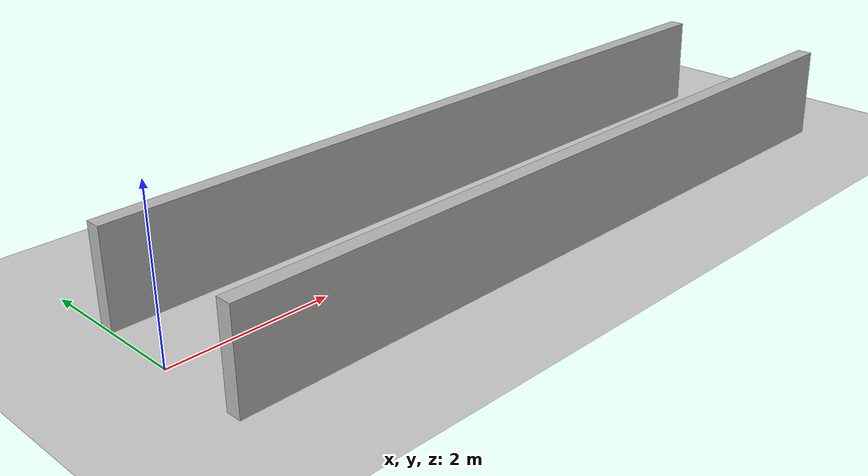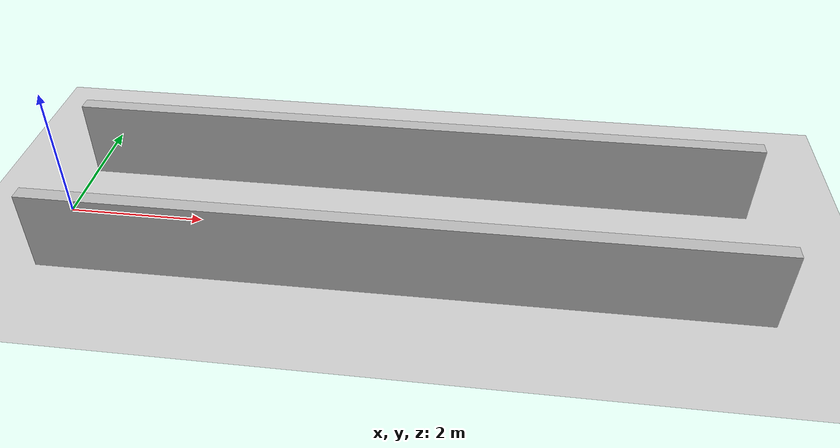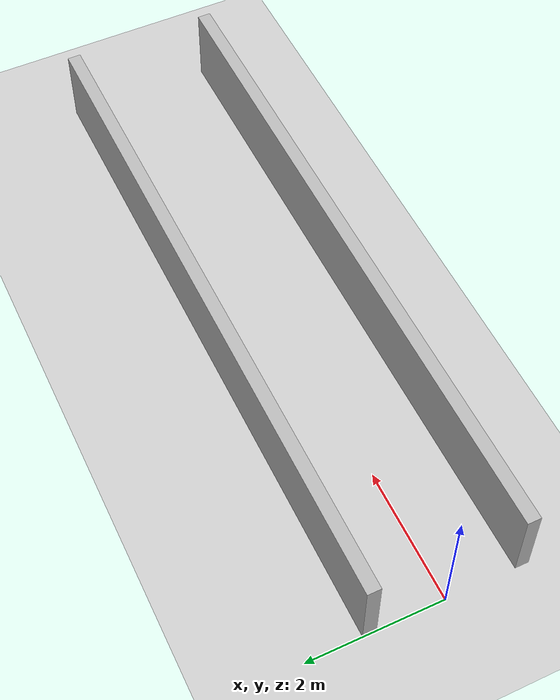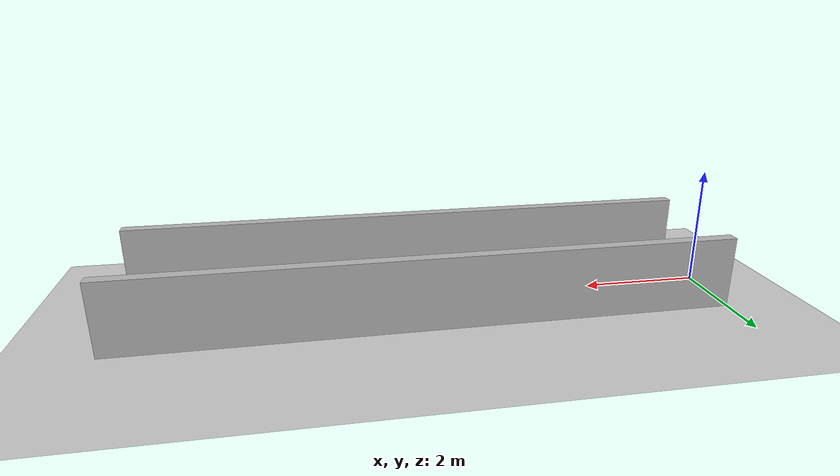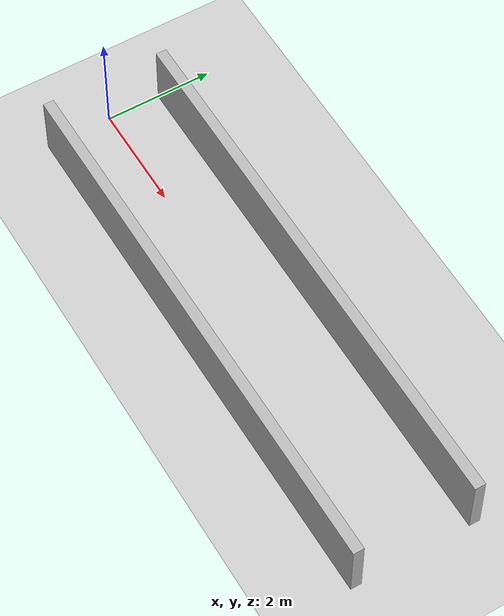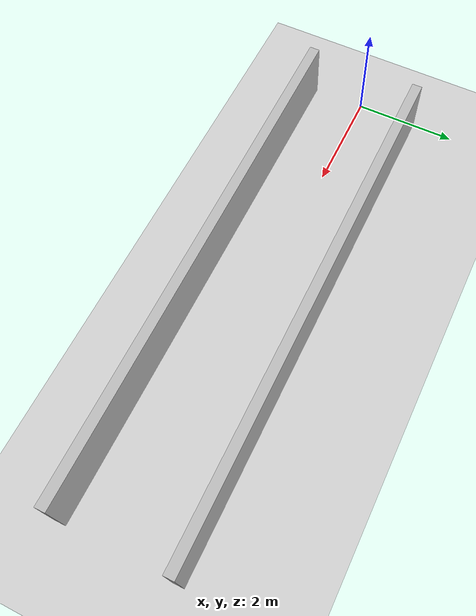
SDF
<?xml version="1.0"?>
<sdf version="1.6">
  <world name="v2-04g-r1-corridor-s4931">
    <gravity>0 0 -9.81</gravity>
    <physics name="v2_deterministic" type="ode">
      <max_step_size>0.002</max_step_size>
      <real_time_update_rate>500</real_time_update_rate>
    </physics>
    <include>
      <uri>model://sun</uri>
    </include>
    <include>
      <uri>model://ground_plane</uri>
    </include>
    <model name="corridor-left">
      <static>true</static>
      <pose>5.005324636 1.098894194 0.600000000 0 0 0.002737395</pose>
      <link name="link">
        <collision name="collision">
          <geometry>
            <box>
              <size>10.000000 0.200000 1.200000</size>
            </box>
          </geometry>
        </collision>
        <visual name="visual">
          <geometry>
            <box>
              <size>10.000000 0.200000 1.200000</size>
            </box>
          </geometry>
        </visual>
      </link>
    </model>
    <model name="corridor-right">
      <static>true</static>
      <pose>4.995414291 -1.107505468 0.600000000 0 0 0.003519884</pose>
      <link name="link">
        <collision name="collision">
          <geometry>
            <box>
              <size>10.000000 0.200000 1.200000</size>
            </box>
          </geometry>
        </collision>
        <visual name="visual">
          <geometry>
            <box>
              <size>10.000000 0.200000 1.200000</size>
            </box>
          </geometry>
        </visual>
      </link>
    </model>
  </world>
</sdf>
